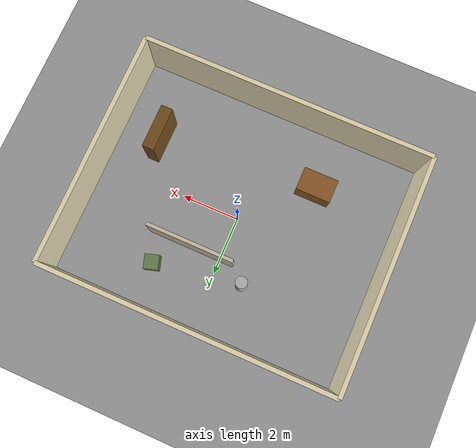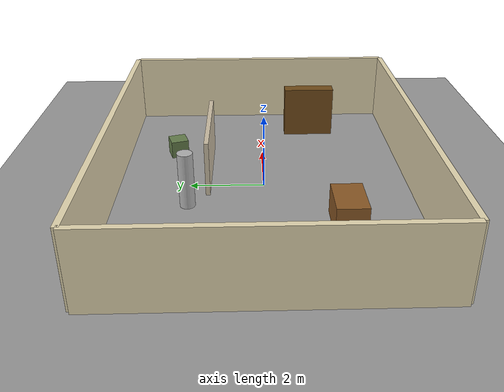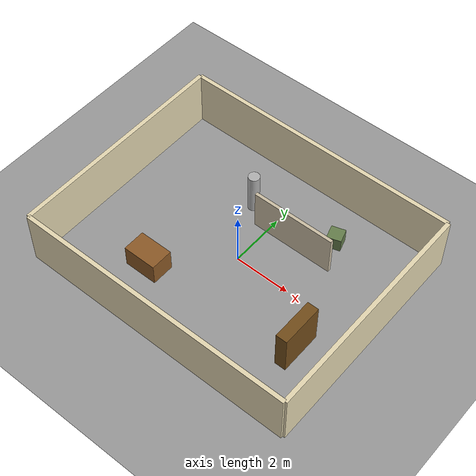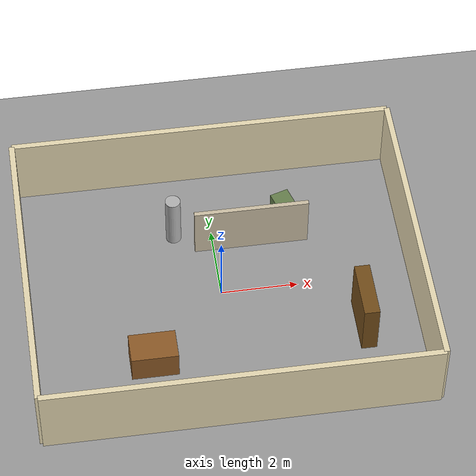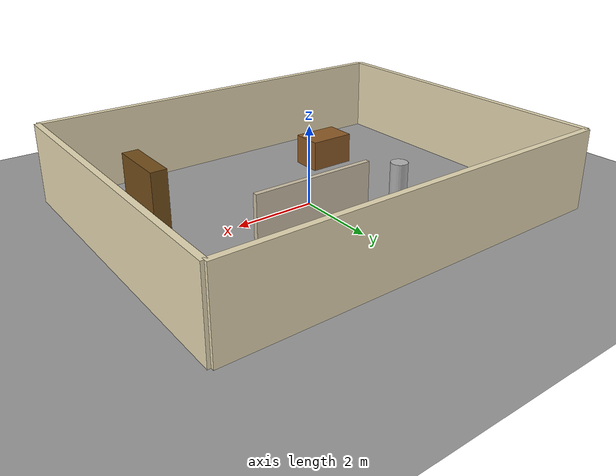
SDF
<?xml version="1.0" ?>
<sdf version="1.8">
  <world name="warehouse">
    <physics name="1ms" type="ignored">
      <max_step_size>0.001</max_step_size>
      <real_time_factor>1.0</real_time_factor>
    </physics>

    <plugin filename="ignition-gazebo-physics-system" name="ignition::gazebo::systems::Physics"/>
    <plugin filename="ignition-gazebo-user-commands-system" name="ignition::gazebo::systems::UserCommands"/>
    <plugin filename="ignition-gazebo-scene-broadcaster-system" name="ignition::gazebo::systems::SceneBroadcaster"/>
    <plugin filename="ignition-gazebo-contact-system" name="ignition::gazebo::systems::Contact"/>
    <plugin filename="ignition-gazebo-sensors-system" name="ignition::gazebo::systems::Sensors">
      <render_engine>ogre2</render_engine>
    </plugin>
    <plugin filename="ignition-gazebo-imu-system" name="ignition::gazebo::systems::Imu"/>

    <scene>
      <ambient>0.4 0.4 0.4 1.0</ambient>
      <background>0.7 0.8 0.9 1.0</background>
      <grid>true</grid>
    </scene>

    <light type="directional" name="sun">
      <cast_shadows>true</cast_shadows>
      <pose>0 0 10 0 0 0</pose>
      <diffuse>0.8 0.8 0.8 1</diffuse>
      <specular>0.2 0.2 0.2 1</specular>
      <direction>-0.5 0.1 -0.9</direction>
    </light>

    <!-- Ground plane -->
    <model name="ground_plane">
      <static>true</static>
      <link name="link">
        <collision name="collision">
          <geometry><plane><normal>0 0 1</normal><size>100 100</size></plane></geometry>
        </collision>
        <visual name="visual">
          <geometry><plane><normal>0 0 1</normal><size>100 100</size></plane></geometry>
          <material>
            <ambient>0.6 0.6 0.6 1</ambient>
            <diffuse>0.6 0.6 0.6 1</diffuse>
          </material>
        </visual>
      </link>
    </model>

    <!-- Room: 10m x 8m enclosed space (like turtlebot3_house) -->
    <!-- North wall -->
    <model name="wall_north">
      <static>true</static>
      <pose>5 0 1 0 0 0</pose>
      <link name="link">
        <collision name="collision"><geometry><box><size>0.15 8 2</size></box></geometry></collision>
        <visual name="visual">
          <geometry><box><size>0.15 8 2</size></box></geometry>
          <material><ambient>0.9 0.85 0.7 1</ambient><diffuse>0.9 0.85 0.7 1</diffuse></material>
        </visual>
      </link>
    </model>

    <!-- South wall -->
    <model name="wall_south">
      <static>true</static>
      <pose>-5 0 1 0 0 0</pose>
      <link name="link">
        <collision name="collision"><geometry><box><size>0.15 8 2</size></box></geometry></collision>
        <visual name="visual">
          <geometry><box><size>0.15 8 2</size></box></geometry>
          <material><ambient>0.9 0.85 0.7 1</ambient><diffuse>0.9 0.85 0.7 1</diffuse></material>
        </visual>
      </link>
    </model>

    <!-- East wall -->
    <model name="wall_east">
      <static>true</static>
      <pose>0 4 1 0 0 0</pose>
      <link name="link">
        <collision name="collision"><geometry><box><size>10 0.15 2</size></box></geometry></collision>
        <visual name="visual">
          <geometry><box><size>10 0.15 2</size></box></geometry>
          <material><ambient>0.9 0.85 0.7 1</ambient><diffuse>0.9 0.85 0.7 1</diffuse></material>
        </visual>
      </link>
    </model>

    <!-- West wall -->
    <model name="wall_west">
      <static>true</static>
      <pose>0 -4 1 0 0 0</pose>
      <link name="link">
        <collision name="collision"><geometry><box><size>10 0.15 2</size></box></geometry></collision>
        <visual name="visual">
          <geometry><box><size>10 0.15 2</size></box></geometry>
          <material><ambient>0.9 0.85 0.7 1</ambient><diffuse>0.9 0.85 0.7 1</diffuse></material>
        </visual>
      </link>
    </model>

    <!-- Interior divider wall (partial, like a room partition) -->
    <model name="divider_1">
      <static>true</static>
      <pose>1 1.5 0.75 0 0 0</pose>
      <link name="link">
        <collision name="collision"><geometry><box><size>3 0.12 1.5</size></box></geometry></collision>
        <visual name="visual">
          <geometry><box><size>3 0.12 1.5</size></box></geometry>
          <material><ambient>0.8 0.75 0.65 1</ambient><diffuse>0.8 0.75 0.65 1</diffuse></material>
        </visual>
      </link>
    </model>

    <!-- Table -->
    <model name="table">
      <static>true</static>
      <pose>-2 -2 0.4 0 0 0</pose>
      <link name="link">
        <collision name="collision"><geometry><box><size>1.2 0.8 0.8</size></box></geometry></collision>
        <visual name="visual">
          <geometry><box><size>1.2 0.8 0.8</size></box></geometry>
          <material><ambient>0.55 0.35 0.15 1</ambient><diffuse>0.55 0.35 0.15 1</diffuse></material>
        </visual>
      </link>
    </model>

    <!-- Shelf / bookcase -->
    <model name="shelf">
      <static>true</static>
      <pose>3.5 -1.5 0.75 0 0 0</pose>
      <link name="link">
        <collision name="collision"><geometry><box><size>0.4 1.5 1.5</size></box></geometry></collision>
        <visual name="visual">
          <geometry><box><size>0.4 1.5 1.5</size></box></geometry>
          <material><ambient>0.45 0.3 0.1 1</ambient><diffuse>0.45 0.3 0.1 1</diffuse></material>
        </visual>
      </link>
    </model>

    <!-- Column / pillar -->
    <model name="pillar">
      <static>true</static>
      <pose>-1 2 0.75 0 0 0</pose>
      <link name="link">
        <collision name="collision"><geometry><cylinder><radius>0.2</radius><length>1.5</length></cylinder></geometry></collision>
        <visual name="visual">
          <geometry><cylinder><radius>0.2</radius><length>1.5</length></cylinder></geometry>
          <material><ambient>0.7 0.7 0.7 1</ambient><diffuse>0.7 0.7 0.7 1</diffuse></material>
        </visual>
      </link>
    </model>

    <!-- Small box obstacle -->
    <model name="crate">
      <static>true</static>
      <pose>2 2.5 0.25 0 0 0.3</pose>
      <link name="link">
        <collision name="collision"><geometry><box><size>0.5 0.5 0.5</size></box></geometry></collision>
        <visual name="visual">
          <geometry><box><size>0.5 0.5 0.5</size></box></geometry>
          <material><ambient>0.4 0.5 0.3 1</ambient><diffuse>0.4 0.5 0.3 1</diffuse></material>
        </visual>
      </link>
    </model>

  </world>
</sdf>
